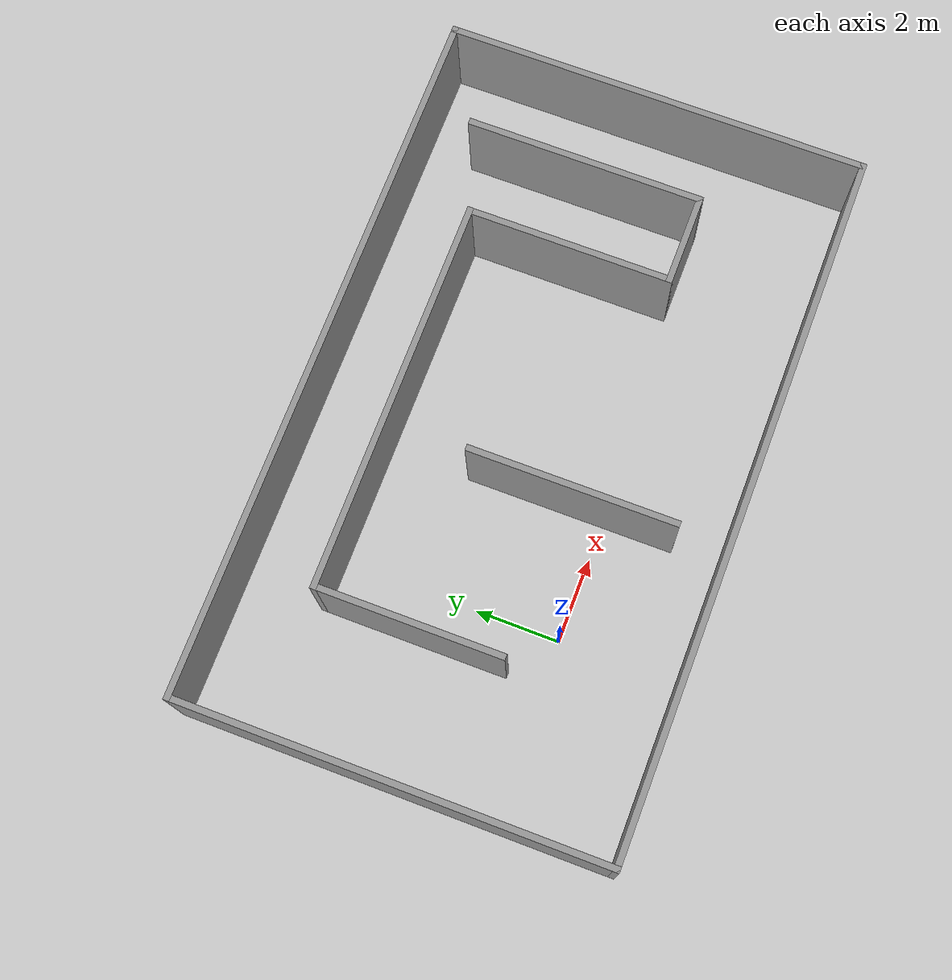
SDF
<?xml version='1.0'?>
<sdf version='1.7'>
  <model name='Untitled'>
    <pose>4.005 2.19 0 0 -0 0</pose>
    <link name='Wall_0'>
      <collision name='Wall_0_Collision'>
        <geometry>
          <box>
            <size>10.25 0.15 2.5</size>
          </box>
        </geometry>
        <pose>0 0 1.25 0 -0 0</pose>
      </collision>
      <visual name='Wall_0_Visual'>
        <pose>0 0 1.25 0 -0 0</pose>
        <geometry>
          <box>
            <size>10.25 0.15 2.5</size>
          </box>
        </geometry>
        <material>
          <script>
            <uri>file://media/materials/scripts/gazebo.material</uri>
            <name>Gazebo/Grey</name>
          </script>
          <ambient>1 1 1 1</ambient>
        </material>
        <meta>
          <layer>0</layer>
        </meta>
      </visual>
      <pose>-8.425 0 0 0 -0 1.5708</pose>
    </link>
    <link name='Wall_1'>
      <collision name='Wall_1_Collision'>
        <geometry>
          <box>
            <size>17 0.15 2.5</size>
          </box>
        </geometry>
        <pose>0 0 1.25 0 -0 0</pose>
      </collision>
      <visual name='Wall_1_Visual'>
        <pose>0 0 1.25 0 -0 0</pose>
        <geometry>
          <box>
            <size>17 0.15 2.5</size>
          </box>
        </geometry>
        <material>
          <script>
            <uri>file://media/materials/scripts/gazebo.material</uri>
            <name>Gazebo/Grey</name>
          </script>
          <ambient>1 1 1 1</ambient>
        </material>
        <meta>
          <layer>0</layer>
        </meta>
      </visual>
      <pose>0 5.05 0 0 -0 0</pose>
    </link>
    <link name='Wall_10'>
      <collision name='Wall_10_Collision'>
        <geometry>
          <box>
            <size>5.75 0.15 2.5</size>
          </box>
        </geometry>
        <pose>0 0 1.25 0 -0 0</pose>
      </collision>
      <visual name='Wall_10_Visual'>
        <pose>0 0 1.25 0 -0 0</pose>
        <geometry>
          <box>
            <size>5.75 0.15 2.5</size>
          </box>
        </geometry>
        <material>
          <script>
            <uri>file://media/materials/scripts/gazebo.material</uri>
            <name>Gazebo/Grey</name>
          </script>
          <ambient>1 1 1 1</ambient>
        </material>
        <meta>
          <layer>0</layer>
        </meta>
      </visual>
      <pose>6.32232 1.01318 0 0 -0 1.5708</pose>
    </link>
    <link name='Wall_12'>
      <collision name='Wall_12_Collision'>
        <geometry>
          <box>
            <size>5 0.15 2.5</size>
          </box>
        </geometry>
        <pose>0 0 1.25 0 -0 0</pose>
      </collision>
      <visual name='Wall_12_Visual'>
        <pose>0 0 1.25 0 -0 0</pose>
        <geometry>
          <box>
            <size>5 0.15 2.5</size>
          </box>
        </geometry>
        <material>
          <script>
            <uri>file://media/materials/scripts/gazebo.material</uri>
            <name>Gazebo/Grey</name>
          </script>
          <ambient>1 1 1 1</ambient>
        </material>
        <meta>
          <layer>0</layer>
        </meta>
      </visual>
      <pose>-1.08212 -1.3846 0 0 -0 -1.5708</pose>
    </link>
    <link name='Wall_2'>
      <collision name='Wall_2_Collision'>
        <geometry>
          <box>
            <size>10.25 0.15 2.5</size>
          </box>
        </geometry>
        <pose>0 0 1.25 0 -0 0</pose>
      </collision>
      <visual name='Wall_2_Visual'>
        <pose>0 0 1.25 0 -0 0</pose>
        <geometry>
          <box>
            <size>10.25 0.15 2.5</size>
          </box>
        </geometry>
        <material>
          <script>
            <uri>file://media/materials/scripts/gazebo.material</uri>
            <name>Gazebo/Grey</name>
          </script>
          <ambient>1 1 1 1</ambient>
        </material>
        <meta>
          <layer>0</layer>
        </meta>
      </visual>
      <pose>8.425 0 0 0 -0 -1.5708</pose>
    </link>
    <link name='Wall_3'>
      <collision name='Wall_3_Collision'>
        <geometry>
          <box>
            <size>17 0.15 2.5</size>
          </box>
        </geometry>
        <pose>0 0 1.25 0 -0 0</pose>
      </collision>
      <visual name='Wall_3_Visual'>
        <pose>0 0 1.25 0 -0 0</pose>
        <geometry>
          <box>
            <size>17 0.15 2.5</size>
          </box>
        </geometry>
        <material>
          <script>
            <uri>file://media/materials/scripts/gazebo.material</uri>
            <name>Gazebo/Grey</name>
          </script>
          <ambient>1 1 1 1</ambient>
        </material>
        <meta>
          <layer>0</layer>
        </meta>
      </visual>
      <pose>0 -5.05 0 0 -0 3.14159</pose>
    </link>
    <link name='Wall_5'>
      <collision name='Wall_5_Collision'>
        <geometry>
          <box>
            <size>4.5 0.15 2.5</size>
          </box>
        </geometry>
        <pose>0 0 1.25 0 -0 0</pose>
      </collision>
      <visual name='Wall_5_Visual'>
        <pose>0 0 1.25 0 -0 0</pose>
        <geometry>
          <box>
            <size>4.5 0.15 2.5</size>
          </box>
        </geometry>
        <material>
          <script>
            <uri>file://media/materials/scripts/gazebo.material</uri>
            <name>Gazebo/Grey</name>
          </script>
          <ambient>1 1 1 1</ambient>
        </material>
        <meta>
          <layer>0</layer>
        </meta>
      </visual>
      <pose>-5.12768 0.88818 0 0 -0 -1.5708</pose>
    </link>
    <link name='Wall_7'>
      <collision name='Wall_7_Collision'>
        <geometry>
          <box>
            <size>9.5 0.15 2.5</size>
          </box>
        </geometry>
        <pose>0 0 1.25 0 -0 0</pose>
      </collision>
      <visual name='Wall_7_Visual'>
        <pose>0 0 1.25 0 -0 0</pose>
        <geometry>
          <box>
            <size>9.5 0.15 2.5</size>
          </box>
        </geometry>
        <material>
          <script>
            <uri>file://media/materials/scripts/gazebo.material</uri>
            <name>Gazebo/Grey</name>
          </script>
          <ambient>1 1 1 1</ambient>
        </material>
        <meta>
          <layer>0</layer>
        </meta>
      </visual>
      <pose>-0.452676 3.06318 0 0 -0 0</pose>
    </link>
    <link name='Wall_8'>
      <collision name='Wall_8_Collision'>
        <geometry>
          <box>
            <size>5 0.15 2.5</size>
          </box>
        </geometry>
        <pose>0 0 1.25 0 -0 0</pose>
      </collision>
      <visual name='Wall_8_Visual'>
        <pose>0 0 1.25 0 -0 0</pose>
        <geometry>
          <box>
            <size>5 0.15 2.5</size>
          </box>
        </geometry>
        <material>
          <script>
            <uri>file://media/materials/scripts/gazebo.material</uri>
            <name>Gazebo/Grey</name>
          </script>
          <ambient>1 1 1 1</ambient>
        </material>
        <meta>
          <layer>0</layer>
        </meta>
      </visual>
      <pose>4.22232 0.63818 0 0 -0 -1.5708</pose>
    </link>
    <link name='Wall_9'>
      <collision name='Wall_9_Collision'>
        <geometry>
          <box>
            <size>2.25 0.15 2.5</size>
          </box>
        </geometry>
        <pose>0 0 1.25 0 -0 0</pose>
      </collision>
      <visual name='Wall_9_Visual'>
        <pose>0 0 1.25 0 -0 0</pose>
        <geometry>
          <box>
            <size>2.25 0.15 2.5</size>
          </box>
        </geometry>
        <material>
          <script>
            <uri>file://media/materials/scripts/gazebo.material</uri>
            <name>Gazebo/Grey</name>
          </script>
          <ambient>1 1 1 1</ambient>
        </material>
        <meta>
          <layer>0</layer>
        </meta>
      </visual>
      <pose>5.27232 -1.78682 0 0 -0 0</pose>
    </link>
    <static>1</static>
  </model>
</sdf>
